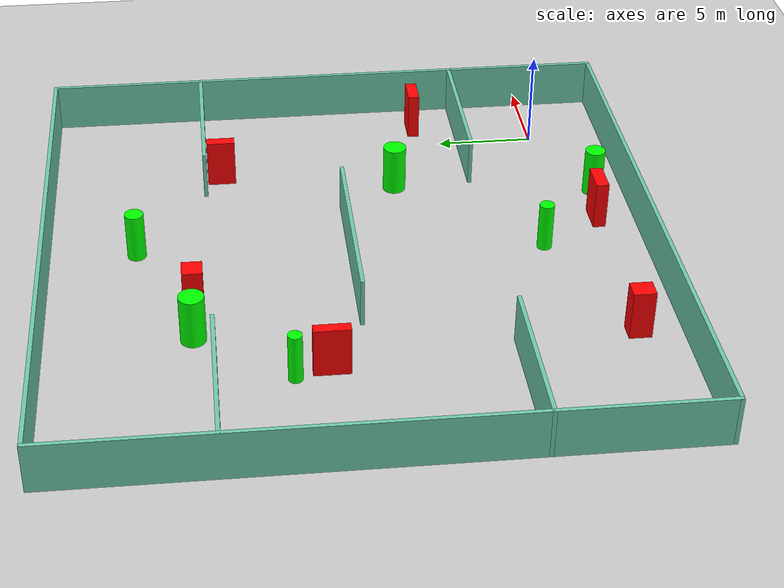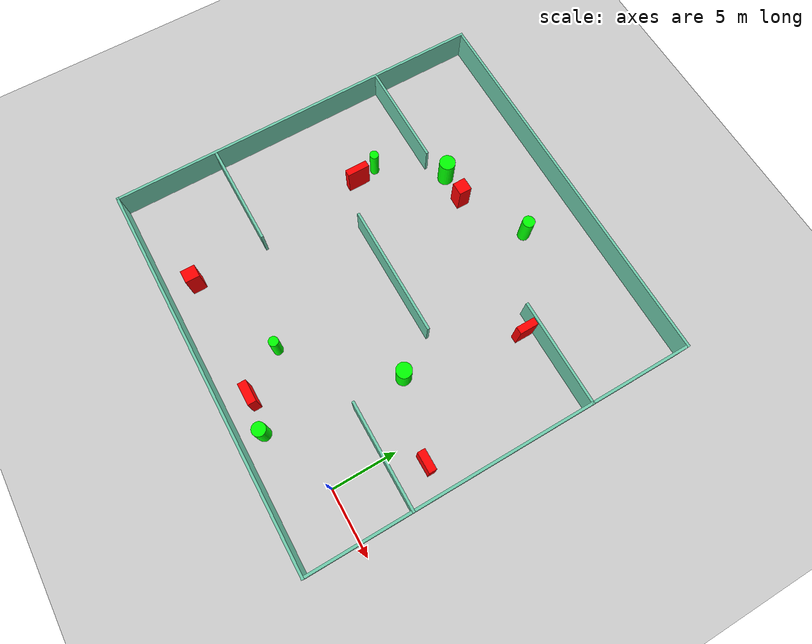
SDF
<sdf version="1.7">
 <world name="default">
  <light name="sun" type="directional">
   <pose>0 0 10 0 -0 0</pose>
   <diffuse>0.8 0.8 0.8 1</diffuse>
   <specular>0.2 0.2 0.2 1</specular>
   <attenuation>
    <range>1000</range>
    <constant>0.9</constant>
    <linear>0.01</linear>
    <quadratic>0.001</quadratic>
   </attenuation>
   <direction>-0.5 0.1 -0.9</direction>
   <spot><inner_angle>0</inner_angle><outer_angle>0</outer_angle><falloff>0</falloff></spot>
  </light>
  <model name="ground_plane">
   <static>1</static>
   <link name="link">
    <collision name="collision">
     <geometry><plane><normal>0 0 1</normal><size>100 100</size></plane></geometry>
     <surface>
      <contact><collide_bitmask>65535</collide_bitmask></contact>
      <friction><ode><mu>100</mu><mu2>50</mu2></ode></friction>
     </surface>
    </collision>
    <visual name="visual">
     <cast_shadows>0</cast_shadows>
     <geometry><plane><normal>0 0 1</normal><size>100 100</size></plane></geometry>
     <material>
      <script><uri>file://media/materials/scripts/gazebo.material</uri><name>Gazebo/Grey</name></script>
     </material>
    </visual>
   </link>
  </model>
  <gravity>0 0 -9.8</gravity>
  <magnetic_field>6e-06 2.3e-05 -4.2e-05</magnetic_field>
  <atmosphere type="adiabatic"/>
  <physics type="ode">
   <max_step_size>0.001</max_step_size>
   <real_time_factor>1</real_time_factor>
   <real_time_update_rate>1000</real_time_update_rate>
  </physics>
  <scene><ambient>0.4 0.4 0.4 1</ambient><background>0.7 0.7 0.7 1</background><shadows>1</shadows></scene>
  <spherical_coordinates>
   <surface_model>EARTH_WGS84</surface_model>
   <latitude_deg>0</latitude_deg>
   <longitude_deg>0</longitude_deg>
   <elevation>0</elevation>
   <heading_deg>0</heading_deg>
  </spherical_coordinates>
  <model name="my_base_walls">
   <link name="Wall_10">
    <collision name="Wall_10_Collision">
     <geometry><box><size>8.2 0.2 2.5</size></box></geometry>
     <pose>0 0 1.25 0 -0 0</pose>
    </collision>
    <visual name="Wall_10_Visual">
     <pose>0 0 1.25 0 -0 0</pose>
     <geometry><box><size>8.2 0.2 2.5</size></box></geometry>
     <material>
      <script><uri>file://media/materials/scripts/gazebo.material</uri><name>Gazebo/Grey</name></script>
      <ambient>0.435294 0.796078 0.67451 1</ambient>
     </material>
     <meta><layer>0</layer></meta>
    </visual>
    <pose>-11 -7 0 0 -0 0</pose>
   </link>
   <link name="Wall_12">
    <collision name="Wall_12_Collision">
     <geometry><box><size>8.2 0.2 2.5</size></box></geometry>
     <pose>0 0 1.25 0 -0 0</pose>
    </collision>
    <visual name="Wall_12_Visual">
     <pose>0 0 1.25 0 -0 0</pose>
     <geometry><box><size>8.2 0.2 2.5</size></box></geometry>
     <material>
      <script><uri>file://media/materials/scripts/gazebo.material</uri><name>Gazebo/Grey</name></script>
      <ambient>0.435294 0.796078 0.67451 1</ambient>
     </material>
     <meta><layer>0</layer></meta>
    </visual>
    <pose>-11 7 0 0 -0 0</pose>
   </link>
   <link name="Wall_14">
    <collision name="Wall_14_Collision">
     <geometry><box><size>8.2 0.2 2.5</size></box></geometry>
     <pose>0 0 1.25 0 -0 0</pose>
    </collision>
    <visual name="Wall_14_Visual">
     <pose>0 0 1.25 0 -0 0</pose>
     <geometry><box><size>8.2 0.2 2.5</size></box></geometry>
     <material>
      <script><uri>file://media/materials/scripts/gazebo.material</uri><name>Gazebo/Grey</name></script>
      <ambient>0.435294 0.796078 0.67451 1</ambient>
     </material>
     <meta><layer>0</layer></meta>
    </visual>
    <pose>11 7 0 0 -0 3.14159</pose>
   </link>
   <link name="Wall_16">
    <collision name="Wall_16_Collision">
     <geometry><box><size>10.2 0.2 2.5</size></box></geometry>
     <pose>0 0 1.25 0 -0 0</pose>
    </collision>
    <visual name="Wall_16_Visual">
     <pose>0 0 1.25 0 -0 0</pose>
     <geometry><box><size>10.2 0.2 2.5</size></box></geometry>
     <material>
      <script><uri>file://media/materials/scripts/gazebo.material</uri><name>Gazebo/Grey</name></script>
      <ambient>0.435294 0.796078 0.67451 1</ambient>
     </material>
     <meta><layer>0</layer></meta>
    </visual>
    <pose>0 0 0 0 -0 3.14159</pose>
   </link>
   <link name="Wall_2">
    <collision name="Wall_2_Collision">
     <geometry><box><size>30.2 0.2 2.5</size></box></geometry>
     <pose>0 0 1.25 0 -0 0</pose>
    </collision>
    <visual name="Wall_2_Visual">
     <pose>0 0 1.25 0 -0 0</pose>
     <geometry><box><size>30.2 0.2 2.5</size></box></geometry>
     <material>
      <script><uri>file://media/materials/scripts/gazebo.material</uri><name>Gazebo/Grey</name></script>
      <ambient>0.435294 0.796078 0.67451 1</ambient>
     </material>
     <meta><layer>0</layer></meta>
    </visual>
    <pose>0 -15 0 0 -0 3.14159</pose>
   </link>
   <link name="Wall_3">
    <collision name="Wall_3_Collision">
     <geometry><box><size>30.2 0.2 2.5</size></box></geometry>
     <pose>0 0 1.25 0 -0 0</pose>
    </collision>
    <visual name="Wall_3_Visual">
     <pose>0 0 1.25 0 -0 0</pose>
     <geometry><box><size>30.2 0.2 2.5</size></box></geometry>
     <material>
      <script><uri>file://media/materials/scripts/gazebo.material</uri><name>Gazebo/Grey</name></script>
      <ambient>0.435294 0.796078 0.67451 1</ambient>
     </material>
     <meta><layer>0</layer></meta>
    </visual>
    <pose>-15 0 0 0 -0 1.5708</pose>
   </link>
   <link name="Wall_4">
    <collision name="Wall_4_Collision">
     <geometry><box><size>30.2 0.2 2.5</size></box></geometry>
     <pose>0 0 1.25 0 -0 0</pose>
    </collision>
    <visual name="Wall_4_Visual">
     <pose>0 0 1.25 0 -0 0</pose>
     <geometry><box><size>30.2 0.2 2.5</size></box></geometry>
     <material>
      <script><uri>file://media/materials/scripts/gazebo.material</uri><name>Gazebo/Grey</name></script>
      <ambient>0.435294 0.796078 0.67451 1</ambient>
     </material>
     <meta><layer>0</layer></meta>
    </visual>
    <pose>0 15 0 0 -0 0</pose>
   </link>
   <link name="Wall_6">
    <collision name="Wall_6_Collision">
     <geometry><box><size>30.2 0.2 2.5</size></box></geometry>
     <pose>0 0 1.25 0 -0 0</pose>
    </collision>
    <visual name="Wall_6_Visual">
     <pose>0 0 1.25 0 -0 0</pose>
     <geometry><box><size>30.2 0.2 2.5</size></box></geometry>
     <material>
      <script><uri>file://media/materials/scripts/gazebo.material</uri><name>Gazebo/Grey</name></script>
      <ambient>0.435294 0.796078 0.67451 1</ambient>
     </material>
     <meta><layer>0</layer></meta>
    </visual>
    <pose>15 0 0 0 -0 1.5708</pose>
   </link>
   <link name="Wall_8">
    <collision name="Wall_8_Collision">
     <geometry><box><size>8.2 0.2 2.5</size></box></geometry>
     <pose>0 0 1.25 0 -0 0</pose>
    </collision>
    <visual name="Wall_8_Visual">
     <pose>0 0 1.25 0 -0 0</pose>
     <geometry><box><size>8.2 0.2 2.5</size></box></geometry>
     <material>
      <script><uri>file://media/materials/scripts/gazebo.material</uri><name>Gazebo/Grey</name></script>
      <ambient>0.435294 0.796078 0.67451 1</ambient>
     </material>
     <meta><layer>0</layer></meta>
    </visual>
    <pose>11 -7 0 0 -0 3.14159</pose>
   </link>
   <static>1</static>
   <pose>-11 11 0 0 -0 0</pose>
  </model>
  <model name="cylinder1">
   <static>1</static>
   <link name="link">
    <inertial>
     <mass>1</mass>
     <inertia><ixx>0.5</ixx><ixy>0</ixy><ixz>0</ixz><iyy>0.5</iyy><iyz>0</iyz><izz>1</izz></inertia>
    </inertial>
    <collision name="collision">
     <geometry><cylinder><radius>0.3730539239645326</radius><length>2.5</length></cylinder></geometry>
    </collision>
    <visual name="visual">
     <geometry><cylinder><radius>0.3730539239645326</radius><length>2.5</length></cylinder></geometry>
     <material>
      <ambient>0 1 0 1</ambient>
      <diffuse>0 1 0 1</diffuse>
      <specular>0.1 0.1 0.1 1</specular>
      <emissive>0 0 0 0</emissive>
     </material>
    </visual>
   </link>
   <pose>-10.469596096632136 1.2054902880413154 1.25 0 0 0</pose>
  </model>
  <model name="cylinder2">
   <static>1</static>
   <link name="link">
    <inertial>
     <mass>1</mass>
     <inertia><ixx>0.5</ixx><ixy>0</ixy><ixz>0</ixz><iyy>0.5</iyy><iyz>0</iyz><izz>1</izz></inertia>
    </inertial>
    <collision name="collision">
     <geometry><cylinder><radius>0.34254397270594156</radius><length>2.5</length></cylinder></geometry>
    </collision>
    <visual name="visual">
     <geometry><cylinder><radius>0.34254397270594156</radius><length>2.5</length></cylinder></geometry>
     <material>
      <ambient>0 1 0 1</ambient>
      <diffuse>0 1 0 1</diffuse>
      <specular>0.1 0.1 0.1 1</specular>
      <emissive>0 0 0 0</emissive>
     </material>
    </visual>
   </link>
   <pose>-19.799978028929296 14.403903125305774 1.25 0 0 0</pose>
  </model>
  <model name="cylinder3">
   <static>1</static>
   <link name="link">
    <inertial>
     <mass>1</mass>
     <inertia><ixx>0.5</ixx><ixy>0</ixy><ixz>0</ixz><iyy>0.5</iyy><iyz>0</iyz><izz>1</izz></inertia>
    </inertial>
    <collision name="collision">
     <geometry><cylinder><radius>0.5204926457930907</radius><length>2.5</length></cylinder></geometry>
    </collision>
    <visual name="visual">
     <geometry><cylinder><radius>0.5204926457930907</radius><length>2.5</length></cylinder></geometry>
     <material>
      <ambient>0 1 0 1</ambient>
      <diffuse>0 1 0 1</diffuse>
      <specular>0.1 0.1 0.1 1</specular>
      <emissive>0 0 0 0</emissive>
     </material>
    </visual>
   </link>
   <pose>-5.5748848271693525 -2.3293782126879283 1.25 0 0 0</pose>
  </model>
  <model name="cylinder4">
   <static>1</static>
   <link name="link">
    <inertial>
     <mass>1</mass>
     <inertia><ixx>0.5</ixx><ixy>0</ixy><ixz>0</ixz><iyy>0.5</iyy><iyz>0</iyz><izz>1</izz></inertia>
    </inertial>
    <collision name="collision">
     <geometry><cylinder><radius>0.6157154684671364</radius><length>2.5</length></cylinder></geometry>
    </collision>
    <visual name="visual">
     <geometry><cylinder><radius>0.6157154684671364</radius><length>2.5</length></cylinder></geometry>
     <material>
      <ambient>0 1 0 1</ambient>
      <diffuse>0 1 0 1</diffuse>
      <specular>0.1 0.1 0.1 1</specular>
      <emissive>0 0 0 0</emissive>
     </material>
    </visual>
   </link>
   <pose>-16.461429086325058 18.923158545020645 1.25 0 0 0</pose>
  </model>
  <model name="cylinder5">
   <static>1</static>
   <link name="link">
    <inertial>
     <mass>1</mass>
     <inertia><ixx>0.5</ixx><ixy>0</ixy><ixz>0</ixz><iyy>0.5</iyy><iyz>0</iyz><izz>1</izz></inertia>
    </inertial>
    <collision name="collision">
     <geometry><cylinder><radius>0.46885932270819763</radius><length>2.5</length></cylinder></geometry>
    </collision>
    <visual name="visual">
     <geometry><cylinder><radius>0.46885932270819763</radius><length>2.5</length></cylinder></geometry>
     <material>
      <ambient>0 1 0 1</ambient>
      <diffuse>0 1 0 1</diffuse>
      <specular>0.1 0.1 0.1 1</specular>
      <emissive>0 0 0 0</emissive>
     </material>
    </visual>
   </link>
   <pose>-9.303366142264412 21.58507883820724 1.25 0 0 0</pose>
  </model>
  <model name="cylinder6">
   <static>1</static>
   <link name="link">
    <inertial>
     <mass>1</mass>
     <inertia><ixx>0.5</ixx><ixy>0</ixy><ixz>0</ixz><iyy>0.5</iyy><iyz>0</iyz><izz>1</izz></inertia>
    </inertial>
    <collision name="collision">
     <geometry><cylinder><radius>0.5912287784023378</radius><length>2.5</length></cylinder></geometry>
    </collision>
    <visual name="visual">
     <geometry><cylinder><radius>0.5912287784023378</radius><length>2.5</length></cylinder></geometry>
     <material>
      <ambient>0 1 0 1</ambient>
      <diffuse>0 1 0 1</diffuse>
      <specular>0.1 0.1 0.1 1</specular>
      <emissive>0 0 0 0</emissive>
     </material>
    </visual>
   </link>
   <pose>-4.2252921063731534 8.058479275586828 1.25 0 0 0</pose>
  </model>
  <model name="box1">
   <static>1</static>
   <link name="link">
    <inertial>
     <mass>1</mass>
     <inertia><ixx>0.083</ixx><ixy>0</ixy><ixz>0</ixz><iyy>0.083</iyy><iyz>0</iyz><izz>0.083</izz></inertia>
    </inertial>
    <collision name="collision">
     <geometry><box><size>1.559379785830558 0.5866839944788168 2.5</size></box></geometry>
    </collision>
    <visual name="visual">
     <geometry><box><size>1.559379785830558 0.5866839944788168 2.5</size></box></geometry>
     <material>
      <ambient>1 0 0 1</ambient>
      <diffuse>1 0 0 1</diffuse>
      <specular>0.1 0.1 0.1 1</specular>
      <emissive>0 0 0 0</emissive>
     </material>
    </visual>
    <sensor name="my_contact" type="contact">
     <contact><collision>box_collision</collision><topic>__default_topic__</topic></contact>
    </sensor>
   </link>
   <pose>1.7399570251108756 6.35633378130691 1.25 0 0 0</pose>
  </model>
  <model name="box2">
   <static>1</static>
   <link name="link">
    <inertial>
     <mass>1</mass>
     <inertia><ixx>0.083</ixx><ixy>0</ixy><ixz>0</ixz><iyy>0.083</iyy><iyz>0</iyz><izz>0.083</izz></inertia>
    </inertial>
    <collision name="collision">
     <geometry><box><size>1.6649024319045989 0.6451263421058127 2.5</size></box></geometry>
    </collision>
    <visual name="visual">
     <geometry><box><size>1.6649024319045989 0.6451263421058127 2.5</size></box></geometry>
     <material>
      <ambient>1 0 0 1</ambient>
      <diffuse>1 0 0 1</diffuse>
      <specular>0.1 0.1 0.1 1</specular>
      <emissive>0 0 0 0</emissive>
     </material>
    </visual>
    <sensor name="my_contact" type="contact">
     <contact><collision>box_collision</collision><topic>__default_topic__</topic></contact>
    </sensor>
   </link>
   <pose>-8.17921572996191 -1.9480695377868158 1.25 0 0 0</pose>
  </model>
  <model name="box3">
   <static>1</static>
   <link name="link">
    <inertial>
     <mass>1</mass>
     <inertia><ixx>0.083</ixx><ixy>0</ixy><ixz>0</ixz><iyy>0.083</iyy><iyz>0</iyz><izz>0.083</izz></inertia>
    </inertial>
    <collision name="collision">
     <geometry><box><size>1.0094822864061888 0.9896874526043862 2.5</size></box></geometry>
    </collision>
    <visual name="visual">
     <geometry><box><size>1.0094822864061888 0.9896874526043862 2.5</size></box></geometry>
     <material>
      <ambient>1 0 0 1</ambient>
      <diffuse>1 0 0 1</diffuse>
      <specular>0.1 0.1 0.1 1</specular>
      <emissive>0 0 0 0</emissive>
     </material>
    </visual>
    <sensor name="my_contact" type="contact">
     <contact><collision>box_collision</collision><topic>__default_topic__</topic></contact>
    </sensor>
   </link>
   <pose>-14.19083943556639 18.84492239538229 1.25 0 0 0</pose>
  </model>
  <model name="box4">
   <static>1</static>
   <link name="link">
    <inertial>
     <mass>1</mass>
     <inertia><ixx>0.083</ixx><ixy>0</ixy><ixz>0</ixz><iyy>0.083</iyy><iyz>0</iyz><izz>0.083</izz></inertia>
    </inertial>
    <collision name="collision">
     <geometry><box><size>0.9609846201768382 1.092381418123276 2.5</size></box></geometry>
    </collision>
    <visual name="visual">
     <geometry><box><size>0.9609846201768382 1.092381418123276 2.5</size></box></geometry>
     <material>
      <ambient>1 0 0 1</ambient>
      <diffuse>1 0 0 1</diffuse>
      <specular>0.1 0.1 0.1 1</specular>
      <emissive>0 0 0 0</emissive>
     </material>
    </visual>
    <sensor name="my_contact" type="contact">
     <contact><collision>box_collision</collision><topic>__default_topic__</topic></contact>
    </sensor>
   </link>
   <pose>-17.898411961940074 -1.7762424588233166 1.25 0 0 0</pose>
  </model>
  <model name="box5">
   <static>1</static>
   <link name="link">
    <inertial>
     <mass>1</mass>
     <inertia><ixx>0.083</ixx><ixy>0</ixy><ixz>0</ixz><iyy>0.083</iyy><iyz>0</iyz><izz>0.083</izz></inertia>
    </inertial>
    <collision name="collision">
     <geometry><box><size>0.5589487785873724 1.4512595545085136 2.5</size></box></geometry>
    </collision>
    <visual name="visual">
     <geometry><box><size>0.5589487785873724 1.4512595545085136 2.5</size></box></geometry>
     <material>
      <ambient>1 0 0 1</ambient>
      <diffuse>1 0 0 1</diffuse>
      <specular>0.1 0.1 0.1 1</specular>
      <emissive>0 0 0 0</emissive>
     </material>
    </visual>
    <sensor name="my_contact" type="contact">
     <contact><collision>box_collision</collision><topic>__default_topic__</topic></contact>
    </sensor>
   </link>
   <pose>-2.6998433232497767 17.11812932624453 1.25 0 0 0</pose>
  </model>
  <model name="box6">
   <static>1</static>
   <link name="link">
    <inertial>
     <mass>1</mass>
     <inertia><ixx>0.083</ixx><ixy>0</ixy><ixz>0</ixz><iyy>0.083</iyy><iyz>0</iyz><izz>0.083</izz></inertia>
    </inertial>
    <collision name="collision">
     <geometry><box><size>0.5173163929890512 1.7524189132278347 2.5</size></box></geometry>
    </collision>
    <visual name="visual">
     <geometry><box><size>0.5173163929890512 1.7524189132278347 2.5</size></box></geometry>
     <material>
      <ambient>1 0 0 1</ambient>
      <diffuse>1 0 0 1</diffuse>
      <specular>0.1 0.1 0.1 1</specular>
      <emissive>0 0 0 0</emissive>
     </material>
    </visual>
    <sensor name="my_contact" type="contact">
     <contact><collision>box_collision</collision><topic>__default_topic__</topic></contact>
    </sensor>
   </link>
   <pose>-19.425068500539613 12.721873781383337 1.25 0 0 0</pose>
  </model>
 </world>
</sdf>
